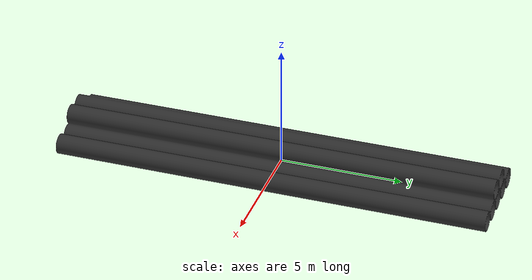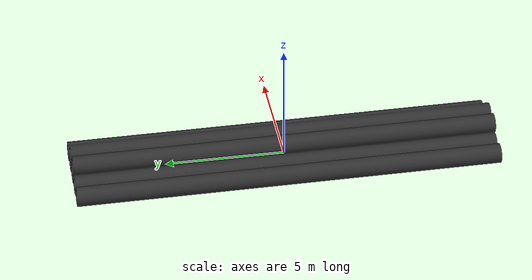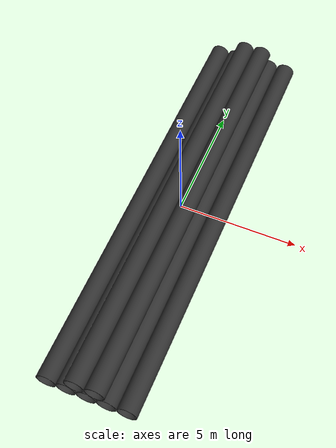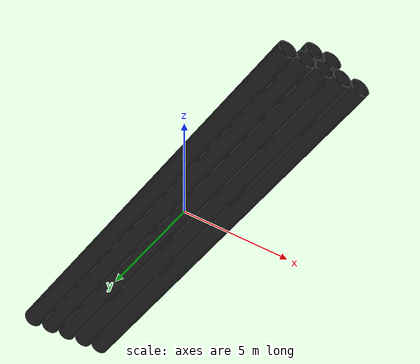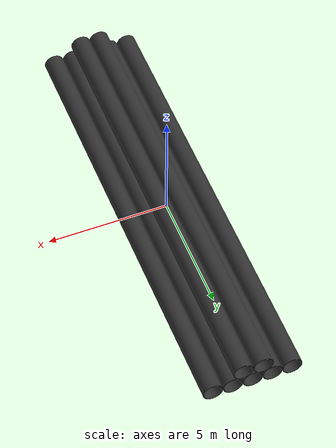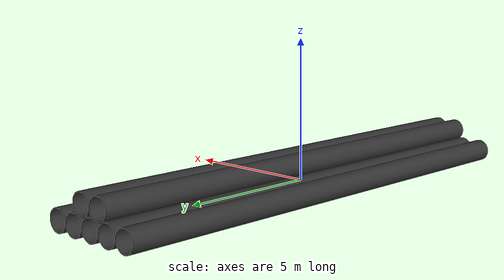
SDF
<?xml version='1.0'?>
<sdf version='1.5'>
  <model name='36inch_pipe_stack'>
    <static>true</static>
    <link name="pipe_stack">
      <visual name="visual">
            <geometry>
                <mesh>
                    <uri>model://medium_pipe_stack/meshes/36inch_pipe_stack.dae</uri>
                </mesh>
            </geometry>
        </visual>
        <collision name="collision">
            <geometry>
                <mesh>
                    <uri>model://medium_pipe_stack/meshes/36inch_pipe_stack.dae</uri>
                </mesh>
            </geometry>
        </collision>
    </link>
  </model>
</sdf>
